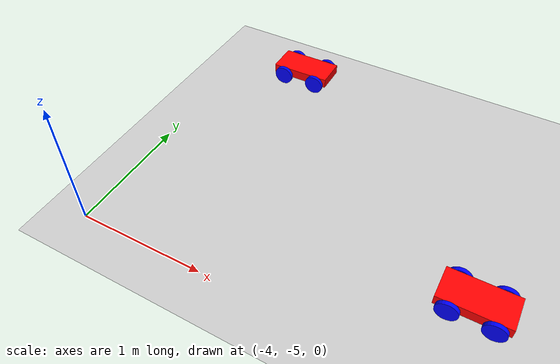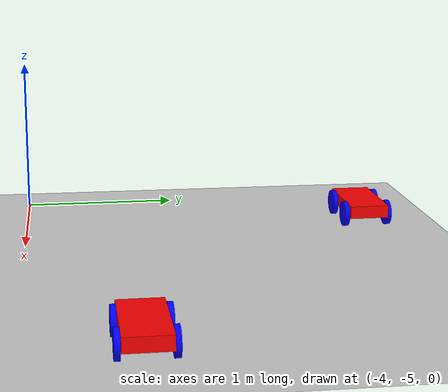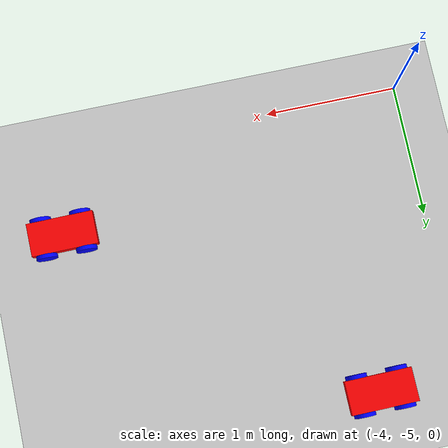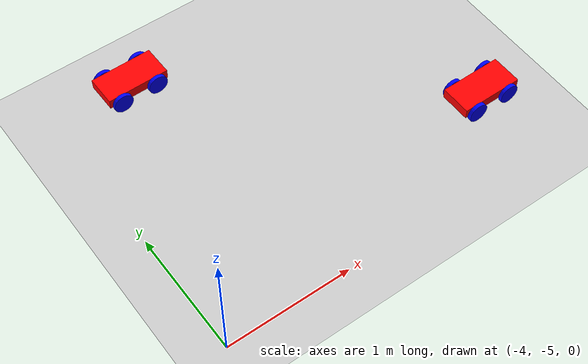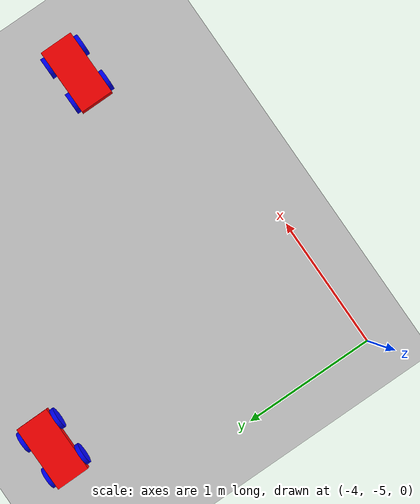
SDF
<sdf version="1.6">
 <world name="default">
  <model name="ground_plane">
   <static>1</static>
   <link name="link">
    <collision name="collision">
     <geometry><plane><normal>0 0 1</normal><size>100 100</size></plane></geometry>
     <surface><friction><ode><mu>100</mu><mu2>50</mu2></ode></friction></surface>
    </collision>
    <visual name="visual">
     <cast_shadows>0</cast_shadows>
     <geometry><plane><normal>0 0 1</normal><size>100 100</size></plane></geometry>
     <material>
      <script><uri>file://media/materials/scripts/gazebo.material</uri><name>Gazebo/Grey</name></script>
     </material>
    </visual>
   </link>
  </model>
  <model name="mybot">
   <link name="link_0">
    <pose>0 0 0.12 0 -0 0</pose>
    <inertial>
     <mass>1</mass>
     <inertia>
      <ixx>0.166667</ixx>
      <ixy>0</ixy>
      <ixz>0</ixz>
      <iyy>0.166667</iyy>
      <iyz>0</iyz>
      <izz>0.166667</izz>
     </inertia>
    </inertial>
    <visual name="visual">
     <geometry><box><size>0.5 0.25 0.08</size></box></geometry>
     <material>
      <lighting>1</lighting>
      <script><uri>file://media/materials/scripts/gazebo.material</uri><name>Gazebo/Grey</name></script>
      <shader type="pixel"><normal_map>__default__</normal_map></shader>
      <ambient>1 0 0 1</ambient>
      <diffuse>0.7 0.7 0.7 1</diffuse>
      <specular>0.01 0.01 0.01 1</specular>
      <emissive>0 0 0 1</emissive>
     </material>
    </visual>
    <collision name="collision">
     <geometry><box><size>0.5 0.25 0.08</size></box></geometry>
     <surface>
      <friction>
       <ode><mu>1</mu><mu2>1</mu2><fdir1>0 0 0</fdir1><slip1>0</slip1><slip2>0</slip2></ode>
       <torsional>
        <coefficient>1</coefficient>
        <patch_radius>0</patch_radius>
        <surface_radius>0</surface_radius>
        <use_patch_radius>1</use_patch_radius>
        <ode><slip>0</slip></ode>
       </torsional>
      </friction>
      <bounce><restitution_coefficient>0</restitution_coefficient><threshold>1e+06</threshold></bounce>
      <contact>
       <collide_without_contact>0</collide_without_contact>
       <collide_without_contact_bitmask>1</collide_without_contact_bitmask>
       <collide_bitmask>1</collide_bitmask>
       <ode>
        <soft_cfm>0</soft_cfm>
        <soft_erp>0.2</soft_erp>
        <kp>1e+13</kp>
        <kd>1</kd>
        <max_vel>0.01</max_vel>
        <min_depth>0</min_depth>
       </ode>
       <bullet>
        <split_impulse>1</split_impulse>
        <split_impulse_penetration_threshold>-0.01</split_impulse_penetration_threshold>
        <soft_cfm>0</soft_cfm>
        <soft_erp>0.2</soft_erp>
        <kp>1e+13</kp>
        <kd>1</kd>
       </bullet>
      </contact>
     </surface>
    </collision>
   </link>
   <link name="link_1_clone">
    <pose>0.15 0.14 0.09 1.571 -0 0</pose>
    <inertial>
     <mass>1</mass>
     <inertia><ixx>0.145833</ixx><ixy>0</ixy><ixz>0</ixz><iyy>0.145833</iyy><iyz>0</iyz><izz>0.125</izz></inertia>
    </inertial>
    <visual name="visual">
     <geometry><cylinder><radius>0.08</radius><length>0.03</length></cylinder></geometry>
     <material>
      <lighting>1</lighting>
      <script><uri>file://media/materials/scripts/gazebo.material</uri><name>Gazebo/Grey</name></script>
      <shader type="pixel"><normal_map>__default__</normal_map></shader>
      <ambient>0 0 1 1</ambient>
      <diffuse>0.7 0.7 0.7 1</diffuse>
      <specular>0.01 0.01 0.01 1</specular>
      <emissive>0 0 0 1</emissive>
     </material>
    </visual>
    <collision name="collision">
     <geometry><cylinder><radius>0.08</radius><length>0.03</length></cylinder></geometry>
     <surface>
      <friction>
       <ode><mu>1</mu><mu2>1</mu2><fdir1>0 0 0</fdir1><slip1>0</slip1><slip2>0</slip2></ode>
       <torsional>
        <coefficient>1</coefficient>
        <patch_radius>0</patch_radius>
        <surface_radius>0</surface_radius>
        <use_patch_radius>1</use_patch_radius>
        <ode><slip>0</slip></ode>
       </torsional>
      </friction>
      <bounce><restitution_coefficient>0</restitution_coefficient><threshold>1e+06</threshold></bounce>
      <contact>
       <collide_without_contact>0</collide_without_contact>
       <collide_without_contact_bitmask>1</collide_without_contact_bitmask>
       <collide_bitmask>1</collide_bitmask>
       <ode>
        <soft_cfm>0</soft_cfm>
        <soft_erp>0.2</soft_erp>
        <kp>1e+13</kp>
        <kd>1</kd>
        <max_vel>0.01</max_vel>
        <min_depth>0</min_depth>
       </ode>
       <bullet>
        <split_impulse>1</split_impulse>
        <split_impulse_penetration_threshold>-0.01</split_impulse_penetration_threshold>
        <soft_cfm>0</soft_cfm>
        <soft_erp>0.2</soft_erp>
        <kp>1e+13</kp>
        <kd>1</kd>
       </bullet>
      </contact>
     </surface>
    </collision>
   </link>
   <link name="link_1_clone_clone">
    <pose>-0.15 0.14 0.09 1.571 -0 0</pose>
    <inertial>
     <mass>1</mass>
     <inertia><ixx>0.145833</ixx><ixy>0</ixy><ixz>0</ixz><iyy>0.145833</iyy><iyz>0</iyz><izz>0.125</izz></inertia>
    </inertial>
    <visual name="visual">
     <geometry><cylinder><radius>0.08</radius><length>0.03</length></cylinder></geometry>
     <material>
      <lighting>1</lighting>
      <script><uri>file://media/materials/scripts/gazebo.material</uri><name>Gazebo/Grey</name></script>
      <shader type="pixel"><normal_map>__default__</normal_map></shader>
      <ambient>0 0 1 1</ambient>
      <diffuse>0.7 0.7 0.7 1</diffuse>
      <specular>0.01 0.01 0.01 1</specular>
      <emissive>0 0 0 1</emissive>
     </material>
    </visual>
    <collision name="collision">
     <geometry><cylinder><radius>0.08</radius><length>0.03</length></cylinder></geometry>
     <surface>
      <friction>
       <ode><mu>1</mu><mu2>1</mu2><fdir1>0 0 0</fdir1><slip1>0</slip1><slip2>0</slip2></ode>
       <torsional>
        <coefficient>1</coefficient>
        <patch_radius>0</patch_radius>
        <surface_radius>0</surface_radius>
        <use_patch_radius>1</use_patch_radius>
        <ode><slip>0</slip></ode>
       </torsional>
      </friction>
      <bounce><restitution_coefficient>0</restitution_coefficient><threshold>1e+06</threshold></bounce>
      <contact>
       <collide_without_contact>0</collide_without_contact>
       <collide_without_contact_bitmask>1</collide_without_contact_bitmask>
       <collide_bitmask>1</collide_bitmask>
       <ode>
        <soft_cfm>0</soft_cfm>
        <soft_erp>0.2</soft_erp>
        <kp>1e+13</kp>
        <kd>1</kd>
        <max_vel>0.01</max_vel>
        <min_depth>0</min_depth>
       </ode>
       <bullet>
        <split_impulse>1</split_impulse>
        <split_impulse_penetration_threshold>-0.01</split_impulse_penetration_threshold>
        <soft_cfm>0</soft_cfm>
        <soft_erp>0.2</soft_erp>
        <kp>1e+13</kp>
        <kd>1</kd>
       </bullet>
      </contact>
     </surface>
    </collision>
   </link>
   <link name="link_1_clone_clone_0">
    <pose>-0.15 -0.14 0.09 1.571 -0 0</pose>
    <inertial>
     <mass>1</mass>
     <inertia><ixx>0.145833</ixx><ixy>0</ixy><ixz>0</ixz><iyy>0.145833</iyy><iyz>0</iyz><izz>0.125</izz></inertia>
    </inertial>
    <visual name="visual">
     <geometry><cylinder><radius>0.08</radius><length>0.03</length></cylinder></geometry>
     <material>
      <lighting>1</lighting>
      <script><uri>file://media/materials/scripts/gazebo.material</uri><name>Gazebo/Grey</name></script>
      <shader type="pixel"><normal_map>__default__</normal_map></shader>
      <ambient>0 0 1 1</ambient>
      <diffuse>0.7 0.7 0.7 1</diffuse>
      <specular>0.01 0.01 0.01 1</specular>
      <emissive>0 0 0 1</emissive>
     </material>
    </visual>
    <collision name="collision">
     <geometry><cylinder><radius>0.08</radius><length>0.03</length></cylinder></geometry>
     <surface>
      <friction>
       <ode><mu>1</mu><mu2>1</mu2><fdir1>0 0 0</fdir1><slip1>0</slip1><slip2>0</slip2></ode>
       <torsional>
        <coefficient>1</coefficient>
        <patch_radius>0</patch_radius>
        <surface_radius>0</surface_radius>
        <use_patch_radius>1</use_patch_radius>
        <ode><slip>0</slip></ode>
       </torsional>
      </friction>
      <bounce><restitution_coefficient>0</restitution_coefficient><threshold>1e+06</threshold></bounce>
      <contact>
       <collide_without_contact>0</collide_without_contact>
       <collide_without_contact_bitmask>1</collide_without_contact_bitmask>
       <collide_bitmask>1</collide_bitmask>
       <ode>
        <soft_cfm>0</soft_cfm>
        <soft_erp>0.2</soft_erp>
        <kp>1e+13</kp>
        <kd>1</kd>
        <max_vel>0.01</max_vel>
        <min_depth>0</min_depth>
       </ode>
       <bullet>
        <split_impulse>1</split_impulse>
        <split_impulse_penetration_threshold>-0.01</split_impulse_penetration_threshold>
        <soft_cfm>0</soft_cfm>
        <soft_erp>0.2</soft_erp>
        <kp>1e+13</kp>
        <kd>1</kd>
       </bullet>
      </contact>
     </surface>
    </collision>
   </link>
   <link name="link_1_clone_clone_1">
    <pose>0.15 -0.14 0.09 1.571 -0 0</pose>
    <inertial>
     <mass>1</mass>
     <inertia><ixx>0.145833</ixx><ixy>0</ixy><ixz>0</ixz><iyy>0.145833</iyy><iyz>0</iyz><izz>0.125</izz></inertia>
    </inertial>
    <visual name="visual">
     <geometry><cylinder><radius>0.08</radius><length>0.03</length></cylinder></geometry>
     <material>
      <lighting>1</lighting>
      <script><uri>file://media/materials/scripts/gazebo.material</uri><name>Gazebo/Grey</name></script>
      <shader type="pixel"><normal_map>__default__</normal_map></shader>
      <ambient>0 0 1 1</ambient>
      <diffuse>0.7 0.7 0.7 1</diffuse>
      <specular>0.01 0.01 0.01 1</specular>
      <emissive>0 0 0 1</emissive>
     </material>
    </visual>
    <collision name="collision">
     <geometry><cylinder><radius>0.08</radius><length>0.03</length></cylinder></geometry>
     <surface>
      <friction>
       <ode><mu>1</mu><mu2>1</mu2><fdir1>0 0 0</fdir1><slip1>0</slip1><slip2>0</slip2></ode>
       <torsional>
        <coefficient>1</coefficient>
        <patch_radius>0</patch_radius>
        <surface_radius>0</surface_radius>
        <use_patch_radius>1</use_patch_radius>
        <ode><slip>0</slip></ode>
       </torsional>
      </friction>
      <bounce><restitution_coefficient>0</restitution_coefficient><threshold>1e+06</threshold></bounce>
      <contact>
       <collide_without_contact>0</collide_without_contact>
       <collide_without_contact_bitmask>1</collide_without_contact_bitmask>
       <collide_bitmask>1</collide_bitmask>
       <ode>
        <soft_cfm>0</soft_cfm>
        <soft_erp>0.2</soft_erp>
        <kp>1e+13</kp>
        <kd>1</kd>
        <max_vel>0.01</max_vel>
        <min_depth>0</min_depth>
       </ode>
       <bullet>
        <split_impulse>1</split_impulse>
        <split_impulse_penetration_threshold>-0.01</split_impulse_penetration_threshold>
        <soft_cfm>0</soft_cfm>
        <soft_erp>0.2</soft_erp>
        <kp>1e+13</kp>
        <kd>1</kd>
       </bullet>
      </contact>
     </surface>
    </collision>
   </link>
   <joint name="link_0_JOINT_0" type="revolute">
    <parent>link_0</parent>
    <child>link_1_clone</child>
    <axis>
     <xyz>0 0 1</xyz>
     <use_parent_model_frame>0</use_parent_model_frame>
     <limit>
      <lower>-1.79769e+308</lower>
      <upper>1.79769e+308</upper>
      <effort>-1</effort>
      <velocity>-1</velocity>
     </limit>
     <dynamics>
      <spring_reference>0</spring_reference>
      <spring_stiffness>0</spring_stiffness>
      <damping>0</damping>
      <friction>0</friction>
     </dynamics>
    </axis>
    <physics>
     <ode><limit><cfm>0</cfm><erp>0.2</erp></limit><suspension><cfm>0</cfm><erp>0.2</erp></suspension></ode>
    </physics>
   </joint>
   <joint name="link_0_JOINT_1" type="revolute">
    <parent>link_0</parent>
    <child>link_1_clone_clone</child>
    <axis>
     <xyz>0 0 1</xyz>
     <use_parent_model_frame>0</use_parent_model_frame>
     <limit>
      <lower>-1.79769e+308</lower>
      <upper>1.79769e+308</upper>
      <effort>-1</effort>
      <velocity>-1</velocity>
     </limit>
     <dynamics>
      <spring_reference>0</spring_reference>
      <spring_stiffness>0</spring_stiffness>
      <damping>0</damping>
      <friction>0</friction>
     </dynamics>
    </axis>
    <physics>
     <ode><limit><cfm>0</cfm><erp>0.2</erp></limit><suspension><cfm>0</cfm><erp>0.2</erp></suspension></ode>
    </physics>
   </joint>
   <joint name="link_0_JOINT_2" type="revolute">
    <parent>link_0</parent>
    <child>link_1_clone_clone_1</child>
    <axis>
     <xyz>0 0 1</xyz>
     <use_parent_model_frame>0</use_parent_model_frame>
     <limit>
      <lower>-1.79769e+308</lower>
      <upper>1.79769e+308</upper>
      <effort>-1</effort>
      <velocity>-1</velocity>
     </limit>
     <dynamics>
      <spring_reference>0</spring_reference>
      <spring_stiffness>0</spring_stiffness>
      <damping>0</damping>
      <friction>0</friction>
     </dynamics>
    </axis>
    <physics>
     <ode><limit><cfm>0</cfm><erp>0.2</erp></limit><suspension><cfm>0</cfm><erp>0.2</erp></suspension></ode>
    </physics>
   </joint>
   <joint name="link_0_JOINT_3" type="revolute">
    <parent>link_0</parent>
    <child>link_1_clone_clone_0</child>
    <axis>
     <xyz>0 0 1</xyz>
     <use_parent_model_frame>0</use_parent_model_frame>
     <limit>
      <lower>-1.79769e+308</lower>
      <upper>1.79769e+308</upper>
      <effort>-1</effort>
      <velocity>-1</velocity>
     </limit>
     <dynamics>
      <spring_reference>0</spring_reference>
      <spring_stiffness>0</spring_stiffness>
      <damping>0</damping>
      <friction>0</friction>
     </dynamics>
    </axis>
    <physics>
     <ode><limit><cfm>0</cfm><erp>0.2</erp></limit><suspension><cfm>0</cfm><erp>0.2</erp></suspension></ode>
    </physics>
   </joint>
   <static>0</static>
   <pose>-3.36192 -2.7761 -0.009997 -1e-06 0 0.011058</pose>
  </model>
  <model name="mybot_2">
   <link name="link_0">
    <pose>0 0 0.12 0 -0 0</pose>
    <inertial>
     <mass>1</mass>
     <inertia>
      <ixx>0.166667</ixx>
      <ixy>0</ixy>
      <ixz>0</ixz>
      <iyy>0.166667</iyy>
      <iyz>0</iyz>
      <izz>0.166667</izz>
     </inertia>
    </inertial>
    <visual name="visual">
     <geometry><box><size>0.5 0.25 0.08</size></box></geometry>
     <material>
      <lighting>1</lighting>
      <script><uri>file://media/materials/scripts/gazebo.material</uri><name>Gazebo/Grey</name></script>
      <shader type="pixel"><normal_map>__default__</normal_map></shader>
      <ambient>1 0 0 1</ambient>
      <diffuse>0.7 0.7 0.7 1</diffuse>
      <specular>0.01 0.01 0.01 1</specular>
      <emissive>0 0 0 1</emissive>
     </material>
    </visual>
    <collision name="collision">
     <geometry><box><size>0.5 0.25 0.08</size></box></geometry>
     <surface>
      <friction>
       <ode><mu>1</mu><mu2>1</mu2><fdir1>0 0 0</fdir1><slip1>0</slip1><slip2>0</slip2></ode>
       <torsional>
        <coefficient>1</coefficient>
        <patch_radius>0</patch_radius>
        <surface_radius>0</surface_radius>
        <use_patch_radius>1</use_patch_radius>
        <ode><slip>0</slip></ode>
       </torsional>
      </friction>
      <bounce><restitution_coefficient>0</restitution_coefficient><threshold>1e+06</threshold></bounce>
      <contact>
       <collide_without_contact>0</collide_without_contact>
       <collide_without_contact_bitmask>1</collide_without_contact_bitmask>
       <collide_bitmask>1</collide_bitmask>
       <ode>
        <soft_cfm>0</soft_cfm>
        <soft_erp>0.2</soft_erp>
        <kp>1e+13</kp>
        <kd>1</kd>
        <max_vel>0.01</max_vel>
        <min_depth>0</min_depth>
       </ode>
       <bullet>
        <split_impulse>1</split_impulse>
        <split_impulse_penetration_threshold>-0.01</split_impulse_penetration_threshold>
        <soft_cfm>0</soft_cfm>
        <soft_erp>0.2</soft_erp>
        <kp>1e+13</kp>
        <kd>1</kd>
       </bullet>
      </contact>
     </surface>
    </collision>
   </link>
   <link name="link_1_clone">
    <pose>0.15 0.14 0.09 1.571 -0 0</pose>
    <inertial>
     <mass>1</mass>
     <inertia><ixx>0.145833</ixx><ixy>0</ixy><ixz>0</ixz><iyy>0.145833</iyy><iyz>0</iyz><izz>0.125</izz></inertia>
    </inertial>
    <visual name="visual">
     <geometry><cylinder><radius>0.08</radius><length>0.03</length></cylinder></geometry>
     <material>
      <lighting>1</lighting>
      <script><uri>file://media/materials/scripts/gazebo.material</uri><name>Gazebo/Grey</name></script>
      <shader type="pixel"><normal_map>__default__</normal_map></shader>
      <ambient>0 0 1 1</ambient>
      <diffuse>0.7 0.7 0.7 1</diffuse>
      <specular>0.01 0.01 0.01 1</specular>
      <emissive>0 0 0 1</emissive>
     </material>
    </visual>
    <collision name="collision">
     <geometry><cylinder><radius>0.08</radius><length>0.03</length></cylinder></geometry>
     <surface>
      <friction>
       <ode><mu>1</mu><mu2>1</mu2><fdir1>0 0 0</fdir1><slip1>0</slip1><slip2>0</slip2></ode>
       <torsional>
        <coefficient>1</coefficient>
        <patch_radius>0</patch_radius>
        <surface_radius>0</surface_radius>
        <use_patch_radius>1</use_patch_radius>
        <ode><slip>0</slip></ode>
       </torsional>
      </friction>
      <bounce><restitution_coefficient>0</restitution_coefficient><threshold>1e+06</threshold></bounce>
      <contact>
       <collide_without_contact>0</collide_without_contact>
       <collide_without_contact_bitmask>1</collide_without_contact_bitmask>
       <collide_bitmask>1</collide_bitmask>
       <ode>
        <soft_cfm>0</soft_cfm>
        <soft_erp>0.2</soft_erp>
        <kp>1e+13</kp>
        <kd>1</kd>
        <max_vel>0.01</max_vel>
        <min_depth>0</min_depth>
       </ode>
       <bullet>
        <split_impulse>1</split_impulse>
        <split_impulse_penetration_threshold>-0.01</split_impulse_penetration_threshold>
        <soft_cfm>0</soft_cfm>
        <soft_erp>0.2</soft_erp>
        <kp>1e+13</kp>
        <kd>1</kd>
       </bullet>
      </contact>
     </surface>
    </collision>
   </link>
   <link name="link_1_clone_clone">
    <pose>-0.15 0.14 0.09 1.571 -0 0</pose>
    <inertial>
     <mass>1</mass>
     <inertia><ixx>0.145833</ixx><ixy>0</ixy><ixz>0</ixz><iyy>0.145833</iyy><iyz>0</iyz><izz>0.125</izz></inertia>
    </inertial>
    <visual name="visual">
     <geometry><cylinder><radius>0.08</radius><length>0.03</length></cylinder></geometry>
     <material>
      <lighting>1</lighting>
      <script><uri>file://media/materials/scripts/gazebo.material</uri><name>Gazebo/Grey</name></script>
      <shader type="pixel"><normal_map>__default__</normal_map></shader>
      <ambient>0 0 1 1</ambient>
      <diffuse>0.7 0.7 0.7 1</diffuse>
      <specular>0.01 0.01 0.01 1</specular>
      <emissive>0 0 0 1</emissive>
     </material>
    </visual>
    <collision name="collision">
     <geometry><cylinder><radius>0.08</radius><length>0.03</length></cylinder></geometry>
     <surface>
      <friction>
       <ode><mu>1</mu><mu2>1</mu2><fdir1>0 0 0</fdir1><slip1>0</slip1><slip2>0</slip2></ode>
       <torsional>
        <coefficient>1</coefficient>
        <patch_radius>0</patch_radius>
        <surface_radius>0</surface_radius>
        <use_patch_radius>1</use_patch_radius>
        <ode><slip>0</slip></ode>
       </torsional>
      </friction>
      <bounce><restitution_coefficient>0</restitution_coefficient><threshold>1e+06</threshold></bounce>
      <contact>
       <collide_without_contact>0</collide_without_contact>
       <collide_without_contact_bitmask>1</collide_without_contact_bitmask>
       <collide_bitmask>1</collide_bitmask>
       <ode>
        <soft_cfm>0</soft_cfm>
        <soft_erp>0.2</soft_erp>
        <kp>1e+13</kp>
        <kd>1</kd>
        <max_vel>0.01</max_vel>
        <min_depth>0</min_depth>
       </ode>
       <bullet>
        <split_impulse>1</split_impulse>
        <split_impulse_penetration_threshold>-0.01</split_impulse_penetration_threshold>
        <soft_cfm>0</soft_cfm>
        <soft_erp>0.2</soft_erp>
        <kp>1e+13</kp>
        <kd>1</kd>
       </bullet>
      </contact>
     </surface>
    </collision>
   </link>
   <link name="link_1_clone_clone_0">
    <pose>-0.15 -0.14 0.09 1.571 -0 0</pose>
    <inertial>
     <mass>1</mass>
     <inertia><ixx>0.145833</ixx><ixy>0</ixy><ixz>0</ixz><iyy>0.145833</iyy><iyz>0</iyz><izz>0.125</izz></inertia>
    </inertial>
    <visual name="visual">
     <geometry><cylinder><radius>0.08</radius><length>0.03</length></cylinder></geometry>
     <material>
      <lighting>1</lighting>
      <script><uri>file://media/materials/scripts/gazebo.material</uri><name>Gazebo/Grey</name></script>
      <shader type="pixel"><normal_map>__default__</normal_map></shader>
      <ambient>0 0 1 1</ambient>
      <diffuse>0.7 0.7 0.7 1</diffuse>
      <specular>0.01 0.01 0.01 1</specular>
      <emissive>0 0 0 1</emissive>
     </material>
    </visual>
    <collision name="collision">
     <geometry><cylinder><radius>0.08</radius><length>0.03</length></cylinder></geometry>
     <surface>
      <friction>
       <ode><mu>1</mu><mu2>1</mu2><fdir1>0 0 0</fdir1><slip1>0</slip1><slip2>0</slip2></ode>
       <torsional>
        <coefficient>1</coefficient>
        <patch_radius>0</patch_radius>
        <surface_radius>0</surface_radius>
        <use_patch_radius>1</use_patch_radius>
        <ode><slip>0</slip></ode>
       </torsional>
      </friction>
      <bounce><restitution_coefficient>0</restitution_coefficient><threshold>1e+06</threshold></bounce>
      <contact>
       <collide_without_contact>0</collide_without_contact>
       <collide_without_contact_bitmask>1</collide_without_contact_bitmask>
       <collide_bitmask>1</collide_bitmask>
       <ode>
        <soft_cfm>0</soft_cfm>
        <soft_erp>0.2</soft_erp>
        <kp>1e+13</kp>
        <kd>1</kd>
        <max_vel>0.01</max_vel>
        <min_depth>0</min_depth>
       </ode>
       <bullet>
        <split_impulse>1</split_impulse>
        <split_impulse_penetration_threshold>-0.01</split_impulse_penetration_threshold>
        <soft_cfm>0</soft_cfm>
        <soft_erp>0.2</soft_erp>
        <kp>1e+13</kp>
        <kd>1</kd>
       </bullet>
      </contact>
     </surface>
    </collision>
   </link>
   <link name="link_1_clone_clone_1">
    <pose>0.15 -0.14 0.09 1.571 -0 0</pose>
    <inertial>
     <mass>1</mass>
     <inertia><ixx>0.145833</ixx><ixy>0</ixy><ixz>0</ixz><iyy>0.145833</iyy><iyz>0</iyz><izz>0.125</izz></inertia>
    </inertial>
    <visual name="visual">
     <geometry><cylinder><radius>0.08</radius><length>0.03</length></cylinder></geometry>
     <material>
      <lighting>1</lighting>
      <script><uri>file://media/materials/scripts/gazebo.material</uri><name>Gazebo/Grey</name></script>
      <shader type="pixel"><normal_map>__default__</normal_map></shader>
      <ambient>0 0 1 1</ambient>
      <diffuse>0.7 0.7 0.7 1</diffuse>
      <specular>0.01 0.01 0.01 1</specular>
      <emissive>0 0 0 1</emissive>
     </material>
    </visual>
    <collision name="collision">
     <geometry><cylinder><radius>0.08</radius><length>0.03</length></cylinder></geometry>
     <surface>
      <friction>
       <ode><mu>1</mu><mu2>1</mu2><fdir1>0 0 0</fdir1><slip1>0</slip1><slip2>0</slip2></ode>
       <torsional>
        <coefficient>1</coefficient>
        <patch_radius>0</patch_radius>
        <surface_radius>0</surface_radius>
        <use_patch_radius>1</use_patch_radius>
        <ode><slip>0</slip></ode>
       </torsional>
      </friction>
      <bounce><restitution_coefficient>0</restitution_coefficient><threshold>1e+06</threshold></bounce>
      <contact>
       <collide_without_contact>0</collide_without_contact>
       <collide_without_contact_bitmask>1</collide_without_contact_bitmask>
       <collide_bitmask>1</collide_bitmask>
       <ode>
        <soft_cfm>0</soft_cfm>
        <soft_erp>0.2</soft_erp>
        <kp>1e+13</kp>
        <kd>1</kd>
        <max_vel>0.01</max_vel>
        <min_depth>0</min_depth>
       </ode>
       <bullet>
        <split_impulse>1</split_impulse>
        <split_impulse_penetration_threshold>-0.01</split_impulse_penetration_threshold>
        <soft_cfm>0</soft_cfm>
        <soft_erp>0.2</soft_erp>
        <kp>1e+13</kp>
        <kd>1</kd>
       </bullet>
      </contact>
     </surface>
    </collision>
   </link>
   <joint name="link_0_JOINT_0" type="revolute">
    <parent>link_0</parent>
    <child>link_1_clone</child>
    <axis>
     <xyz>0 0 1</xyz>
     <use_parent_model_frame>0</use_parent_model_frame>
     <limit>
      <lower>-1.79769e+308</lower>
      <upper>1.79769e+308</upper>
      <effort>-1</effort>
      <velocity>-1</velocity>
     </limit>
     <dynamics>
      <spring_reference>0</spring_reference>
      <spring_stiffness>0</spring_stiffness>
      <damping>0</damping>
      <friction>0</friction>
     </dynamics>
    </axis>
    <physics>
     <ode><limit><cfm>0</cfm><erp>0.2</erp></limit><suspension><cfm>0</cfm><erp>0.2</erp></suspension></ode>
    </physics>
   </joint>
   <joint name="link_0_JOINT_1" type="revolute">
    <parent>link_0</parent>
    <child>link_1_clone_clone</child>
    <axis>
     <xyz>0 0 1</xyz>
     <use_parent_model_frame>0</use_parent_model_frame>
     <limit>
      <lower>-1.79769e+308</lower>
      <upper>1.79769e+308</upper>
      <effort>-1</effort>
      <velocity>-1</velocity>
     </limit>
     <dynamics>
      <spring_reference>0</spring_reference>
      <spring_stiffness>0</spring_stiffness>
      <damping>0</damping>
      <friction>0</friction>
     </dynamics>
    </axis>
    <physics>
     <ode><limit><cfm>0</cfm><erp>0.2</erp></limit><suspension><cfm>0</cfm><erp>0.2</erp></suspension></ode>
    </physics>
   </joint>
   <joint name="link_0_JOINT_2" type="revolute">
    <parent>link_0</parent>
    <child>link_1_clone_clone_1</child>
    <axis>
     <xyz>0 0 1</xyz>
     <use_parent_model_frame>0</use_parent_model_frame>
     <limit>
      <lower>-1.79769e+308</lower>
      <upper>1.79769e+308</upper>
      <effort>-1</effort>
      <velocity>-1</velocity>
     </limit>
     <dynamics>
      <spring_reference>0</spring_reference>
      <spring_stiffness>0</spring_stiffness>
      <damping>0</damping>
      <friction>0</friction>
     </dynamics>
    </axis>
    <physics>
     <ode><limit><cfm>0</cfm><erp>0.2</erp></limit><suspension><cfm>0</cfm><erp>0.2</erp></suspension></ode>
    </physics>
   </joint>
   <joint name="link_0_JOINT_3" type="revolute">
    <parent>link_0</parent>
    <child>link_1_clone_clone_0</child>
    <axis>
     <xyz>0 0 1</xyz>
     <use_parent_model_frame>0</use_parent_model_frame>
     <limit>
      <lower>-1.79769e+308</lower>
      <upper>1.79769e+308</upper>
      <effort>-1</effort>
      <velocity>-1</velocity>
     </limit>
     <dynamics>
      <spring_reference>0</spring_reference>
      <spring_stiffness>0</spring_stiffness>
      <damping>0</damping>
      <friction>0</friction>
     </dynamics>
    </axis>
    <physics>
     <ode><limit><cfm>0</cfm><erp>0.2</erp></limit><suspension><cfm>0</cfm><erp>0.2</erp></suspension></ode>
    </physics>
   </joint>
   <static>0</static>
   <pose>-1.31006 -4.38499 -0.009997 -1e-06 -0 0.007291</pose>
  </model>
 </world>
</sdf>
